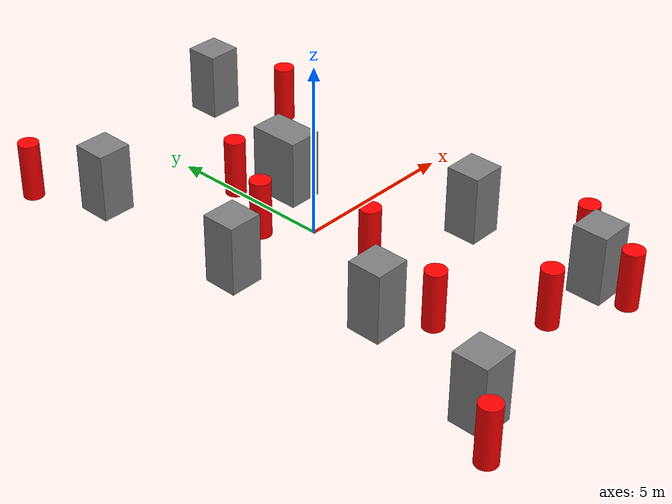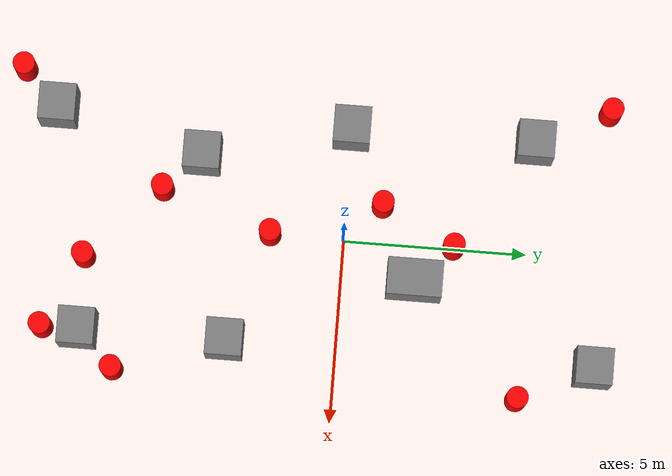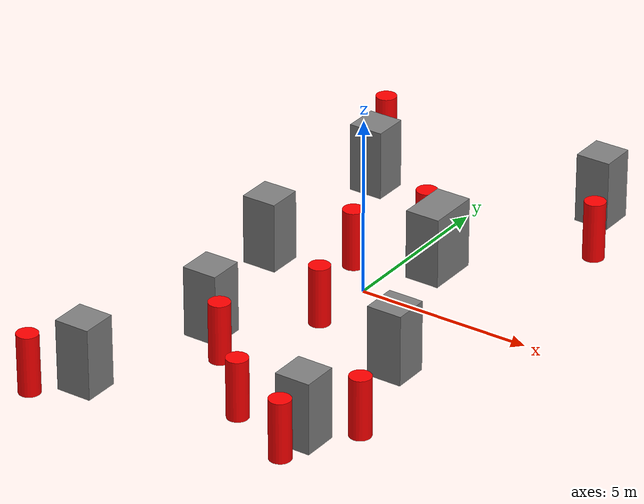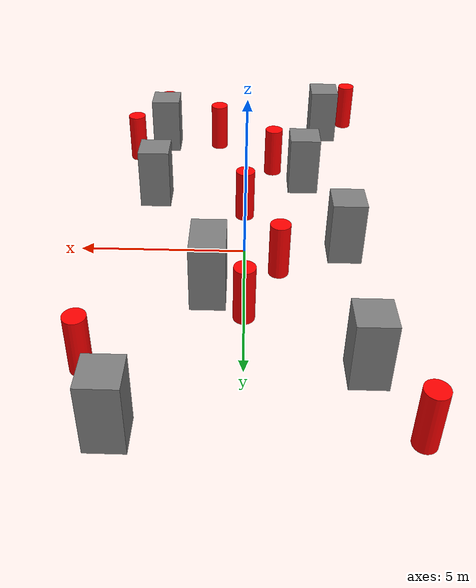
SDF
<sdf version='1.7'>
  <world name='default'>

    <!-- 场景说明: 10x20 地图 (X: [-5,5], Y: [-10,10])               -->
    <!-- 8 个静态方形障碍物 (灰色) + 10 个动态圆柱障碍物 (红色)      -->
    <!-- 环境/颜色参考 test_A_star.world                              -->

    <!-- ===================== 动态圆柱障碍物 ====================== -->

    <!-- 动态0: 沿 X 往返 (-4,-9) <-> (4,-9) -->
    <model name='dynamic_cylinder_0_0.6_0.6_1.7'>
      <static>true</static>
      <pose>-4.0 -9.0 0.85 0 0 0</pose>
      <link name='link'>
        <visual name='visual'>
          <geometry>
            <cylinder>
              <radius>0.3</radius>
              <length>1.7</length>
            </cylinder>
          </geometry>
          <material>
            <ambient>1 0 0 1</ambient>
            <diffuse>1 0 0 1</diffuse>
            <specular>0.5 0.5 0.5 1</specular>
          </material>
        </visual>
      </link>
      <plugin name="obstacle_motion" filename="libobstaclePathPlugin.so">
        <orientation>false</orientation>
        <loop>1</loop>
        <velocity>0.4</velocity>
        <path>
          <waypoint>-4.0 -9.0 0.85</waypoint>
          <waypoint>4.0 -9.0 0.85</waypoint>
        </path>
      </plugin>
    </model>

    <!-- 动态1: 沿 Y 往返 (1,-7) <-> (1,-1) -->
    <model name='dynamic_cylinder_1_0.6_0.6_1.7'>
      <static>true</static>
      <pose>1.0 -7.0 0.85 0 0 0</pose>
      <link name='link'>
        <visual name='visual'>
          <geometry>
            <cylinder>
              <radius>0.3</radius>
              <length>1.7</length>
            </cylinder>
          </geometry>
          <material>
            <ambient>1 0 0 1</ambient>
            <diffuse>1 0 0 1</diffuse>
            <specular>0.5 0.5 0.5 1</specular>
          </material>
        </visual>
      </link>
      <plugin name="obstacle_motion" filename="libobstaclePathPlugin.so">
        <orientation>false</orientation>
        <loop>1</loop>
        <velocity>0.45</velocity>
        <path>
          <waypoint>1.0 -7.0 0.85</waypoint>
          <waypoint>1.0 -1.0 0.85</waypoint>
        </path>
      </plugin>
    </model>

    <!-- 动态2: 沿 Y 往返 (4,-6) <-> (4,1) -->
    <model name='dynamic_cylinder_2_0.6_0.6_1.7'>
      <static>true</static>
      <pose>4.0 -6.0 0.85 0 0 0</pose>
      <link name='link'>
        <visual name='visual'>
          <geometry>
            <cylinder>
              <radius>0.3</radius>
              <length>1.7</length>
            </cylinder>
          </geometry>
          <material>
            <ambient>1 0 0 1</ambient>
            <diffuse>1 0 0 1</diffuse>
            <specular>0.5 0.5 0.5 1</specular>
          </material>
        </visual>
      </link>
      <plugin name="obstacle_motion" filename="libobstaclePathPlugin.so">
        <orientation>false</orientation>
        <loop>1</loop>
        <velocity>0.38</velocity>
        <path>
          <waypoint>4.0 -6.0 0.85</waypoint>
          <waypoint>4.0 1.0 0.85</waypoint>
        </path>
      </plugin>
    </model>

    <!-- 动态3: 斜向往返 (-1,-5) <-> (3,-1) -->
    <model name='dynamic_cylinder_3_0.6_0.6_1.7'>
      <static>true</static>
      <pose>-1.0 -5.0 0.85 0 0 0</pose>
      <link name='link'>
        <visual name='visual'>
          <geometry>
            <cylinder>
              <radius>0.3</radius>
              <length>1.7</length>
            </cylinder>
          </geometry>
          <material>
            <ambient>1 0 0 1</ambient>
            <diffuse>1 0 0 1</diffuse>
            <specular>0.5 0.5 0.5 1</specular>
          </material>
        </visual>
      </link>
      <plugin name="obstacle_motion" filename="libobstaclePathPlugin.so">
        <orientation>false</orientation>
        <loop>1</loop>
        <velocity>0.42</velocity>
        <path>
          <waypoint>-1.0 -5.0 0.85</waypoint>
          <waypoint>3.0 -1.0 0.85</waypoint>
        </path>
      </plugin>
    </model>

    <!-- 动态4: 沿 Y 往返 (0,-2) <-> (0,5) -->
    <model name='dynamic_cylinder_4_0.6_0.6_1.7'>
      <static>true</static>
      <pose>0.0 -2.0 0.85 0 0 0</pose>
      <link name='link'>
        <visual name='visual'>
          <geometry>
            <cylinder>
              <radius>0.3</radius>
              <length>1.7</length>
            </cylinder>
          </geometry>
          <material>
            <ambient>1 0 0 1</ambient>
            <diffuse>1 0 0 1</diffuse>
            <specular>0.5 0.5 0.5 1</specular>
          </material>
        </visual>
      </link>
      <plugin name="obstacle_motion" filename="libobstaclePathPlugin.so">
        <orientation>false</orientation>
        <loop>1</loop>
        <velocity>0.5</velocity>
        <path>
          <waypoint>0.0 -2.0 0.85</waypoint>
          <waypoint>0.0 5.0 0.85</waypoint>
        </path>
      </plugin>
    </model>

    <!-- 动态5: 沿 X 往返 (0,3) <-> (4,3) -->
    <model name='dynamic_cylinder_5_0.6_0.6_1.7'>
      <static>true</static>
      <pose>0.0 3.0 0.85 0 0 0</pose>
      <link name='link'>
        <visual name='visual'>
          <geometry>
            <cylinder>
              <radius>0.3</radius>
              <length>1.7</length>
            </cylinder>
          </geometry>
          <material>
            <ambient>1 0 0 1</ambient>
            <diffuse>1 0 0 1</diffuse>
            <specular>0.5 0.5 0.5 1</specular>
          </material>
        </visual>
      </link>
      <plugin name="obstacle_motion" filename="libobstaclePathPlugin.so">
        <orientation>false</orientation>
        <loop>1</loop>
        <velocity>0.35</velocity>
        <path>
          <waypoint>0.0 3.0 0.85</waypoint>
          <waypoint>4.0 3.0 0.85</waypoint>
        </path>
      </plugin>
    </model>

    <!-- 动态6: 斜向往返 (-1,1) <-> (3,6) -->
    <model name='dynamic_cylinder_6_0.6_0.6_1.7'>
      <static>true</static>
      <pose>-1.0 1.0 0.85 0 0 0</pose>
      <link name='link'>
        <visual name='visual'>
          <geometry>
            <cylinder>
              <radius>0.3</radius>
              <length>1.7</length>
            </cylinder>
          </geometry>
          <material>
            <ambient>1 0 0 1</ambient>
            <diffuse>1 0 0 1</diffuse>
            <specular>0.5 0.5 0.5 1</specular>
          </material>
        </visual>
      </link>
      <plugin name="obstacle_motion" filename="libobstaclePathPlugin.so">
        <orientation>false</orientation>
        <loop>1</loop>
        <velocity>0.48</velocity>
        <path>
          <waypoint>-1.0 1.0 0.85</waypoint>
          <waypoint>3.0 6.0 0.85</waypoint>
        </path>
      </plugin>
    </model>

    <!-- 动态7: 斜向往返 (4,5) <-> (-4,8) -->
    <model name='dynamic_cylinder_7_0.6_0.6_1.7'>
      <static>true</static>
      <pose>4.0 5.0 0.85 0 0 0</pose>
      <link name='link'>
        <visual name='visual'>
          <geometry>
            <cylinder>
              <radius>0.3</radius>
              <length>1.7</length>
            </cylinder>
          </geometry>
          <material>
            <ambient>1 0 0 1</ambient>
            <diffuse>1 0 0 1</diffuse>
            <specular>0.5 0.5 0.5 1</specular>
          </material>
        </visual>
      </link>
      <plugin name="obstacle_motion" filename="libobstaclePathPlugin.so">
        <orientation>false</orientation>
        <loop>1</loop>
        <velocity>0.4</velocity>
        <path>
          <waypoint>4.0 5.0 0.85</waypoint>
          <waypoint>-4.0 8.0 0.85</waypoint>
        </path>
      </plugin>
    </model>

    <!-- 动态8: 沿 X 往返 (-4,7) <-> (4,7) -->
    <model name='dynamic_cylinder_8_0.6_0.6_1.7'>
      <static>true</static>
      <pose>-4.0 7.0 0.85 0 0 0</pose>
      <link name='link'>
        <visual name='visual'>
          <geometry>
            <cylinder>
              <radius>0.3</radius>
              <length>1.7</length>
            </cylinder>
          </geometry>
          <material>
            <ambient>1 0 0 1</ambient>
            <diffuse>1 0 0 1</diffuse>
            <specular>0.5 0.5 0.5 1</specular>
          </material>
        </visual>
      </link>
      <plugin name="obstacle_motion" filename="libobstaclePathPlugin.so">
        <orientation>false</orientation>
        <loop>1</loop>
        <velocity>0.43</velocity>
        <path>
          <waypoint>-4.0 7.0 0.85</waypoint>
          <waypoint>4.0 7.0 0.85</waypoint>
        </path>
      </plugin>
    </model>

    <!-- 动态9: 斜向往返 (3,-8) <-> (-3,0) -->
    <model name='dynamic_cylinder_9_0.6_0.6_1.7'>
      <static>true</static>
      <pose>3.0 -8.0 0.85 0 0 0</pose>
      <link name='link'>
        <visual name='visual'>
          <geometry>
            <cylinder>
              <radius>0.3</radius>
              <length>1.7</length>
            </cylinder>
          </geometry>
          <material>
            <ambient>1 0 0 1</ambient>
            <diffuse>1 0 0 1</diffuse>
            <specular>0.5 0.5 0.5 1</specular>
          </material>
        </visual>
      </link>
      <plugin name="obstacle_motion" filename="libobstaclePathPlugin.so">
        <orientation>false</orientation>
        <loop>1</loop>
        <velocity>0.46</velocity>
        <path>
          <waypoint>3.0 -8.0 0.85</waypoint>
          <waypoint>-3.0 0.0 0.85</waypoint>
        </path>
      </plugin>
    </model>

    <!-- ===================== 静态方形障碍物 ====================== -->

    <!-- 静态方形0: (-3, -8) -->
    <model name='static_box_0'>
      <static>true</static>
      <pose>-3.0 -8.0 1.0 0 0 0</pose>
      <link name='link'>
        <visual name='visual'>
          <geometry>
            <box>
              <size>1.0 1.0 2.0</size>
            </box>
          </geometry>
          <material>
            <ambient>0.5 0.5 0.5 1</ambient>
            <diffuse>0.5 0.5 0.5 1</diffuse>
            <specular>0.3 0.3 0.3 1</specular>
          </material>
        </visual>
        <collision name='collision'>
          <geometry>
            <box>
              <size>1.0 1.0 2.0</size>
            </box>
          </geometry>
        </collision>
      </link>
    </model>

    <!-- 静态方形1: (3, -7) -->
    <model name='static_box_1'>
      <static>true</static>
      <pose>3.0 -7.0 1.0 0 0 0</pose>
      <link name='link'>
        <visual name='visual'>
          <geometry>
            <box>
              <size>1.0 1.0 2.0</size>
            </box>
          </geometry>
          <material>
            <ambient>0.5 0.5 0.5 1</ambient>
            <diffuse>0.5 0.5 0.5 1</diffuse>
            <specular>0.3 0.3 0.3 1</specular>
          </material>
        </visual>
        <collision name='collision'>
          <geometry>
            <box>
              <size>1.0 1.0 2.0</size>
            </box>
          </geometry>
        </collision>
      </link>
    </model>

    <!-- 静态方形2: (-2, -4) -->
    <model name='static_box_2'>
      <static>true</static>
      <pose>-2.0 -4.0 1.0 0 0 0</pose>
      <link name='link'>
        <visual name='visual'>
          <geometry>
            <box>
              <size>1.0 1.0 2.0</size>
            </box>
          </geometry>
          <material>
            <ambient>0.5 0.5 0.5 1</ambient>
            <diffuse>0.5 0.5 0.5 1</diffuse>
            <specular>0.3 0.3 0.3 1</specular>
          </material>
        </visual>
        <collision name='collision'>
          <geometry>
            <box>
              <size>1.0 1.0 2.0</size>
            </box>
          </geometry>
        </collision>
      </link>
    </model>

    <!-- 静态方形3: (3, -3) -->
    <model name='static_box_3'>
      <static>true</static>
      <pose>3.0 -3.0 1.0 0 0 0</pose>
      <link name='link'>
        <visual name='visual'>
          <geometry>
            <box>
              <size>1.0 1.0 2.0</size>
            </box>
          </geometry>
          <material>
            <ambient>0.5 0.5 0.5 1</ambient>
            <diffuse>0.5 0.5 0.5 1</diffuse>
            <specular>0.3 0.3 0.3 1</specular>
          </material>
        </visual>
        <collision name='collision'>
          <geometry>
            <box>
              <size>1.0 1.0 2.0</size>
            </box>
          </geometry>
        </collision>
      </link>
    </model>

    <!-- 静态方形4: (-3, 0) -->
    <model name='static_box_4'>
      <static>true</static>
      <pose>-3.0 0.0 1.0 0 0 0</pose>
      <link name='link'>
        <visual name='visual'>
          <geometry>
            <box>
              <size>1.0 1.0 2.0</size>
            </box>
          </geometry>
          <material>
            <ambient>0.5 0.5 0.5 1</ambient>
            <diffuse>0.5 0.5 0.5 1</diffuse>
            <specular>0.3 0.3 0.3 1</specular>
          </material>
        </visual>
        <collision name='collision'>
          <geometry>
            <box>
              <size>1.0 1.0 2.0</size>
            </box>
          </geometry>
        </collision>
      </link>
    </model>

    <!-- 静态方形5: (1, 2) -->
    <model name='static_box_5'>
      <static>true</static>
      <pose>1.0 2.0 1.0 0 0 0</pose>
      <link name='link'>
        <visual name='visual'>
          <geometry>
            <box>
              <size>1.0 1.5 2.0</size>
            </box>
          </geometry>
          <material>
            <ambient>0.5 0.5 0.5 1</ambient>
            <diffuse>0.5 0.5 0.5 1</diffuse>
            <specular>0.3 0.3 0.3 1</specular>
          </material>
        </visual>
        <collision name='collision'>
          <geometry>
            <box>
              <size>1.0 1.5 2.0</size>
            </box>
          </geometry>
        </collision>
      </link>
    </model>

    <!-- 静态方形6: (-3, 5) -->
    <model name='static_box_6'>
      <static>true</static>
      <pose>-3.0 5.0 1.0 0 0 0</pose>
      <link name='link'>
        <visual name='visual'>
          <geometry>
            <box>
              <size>1.0 1.0 2.0</size>
            </box>
          </geometry>
          <material>
            <ambient>0.5 0.5 0.5 1</ambient>
            <diffuse>0.5 0.5 0.5 1</diffuse>
            <specular>0.3 0.3 0.3 1</specular>
          </material>
        </visual>
        <collision name='collision'>
          <geometry>
            <box>
              <size>1.0 1.0 2.0</size>
            </box>
          </geometry>
        </collision>
      </link>
    </model>

    <!-- 静态方形7: (3, 7) -->
    <model name='static_box_7'>
      <static>true</static>
      <pose>3.0 7.0 1.0 0 0 0</pose>
      <link name='link'>
        <visual name='visual'>
          <geometry>
            <box>
              <size>1.0 1.0 2.0</size>
            </box>
          </geometry>
          <material>
            <ambient>0.5 0.5 0.5 1</ambient>
            <diffuse>0.5 0.5 0.5 1</diffuse>
            <specular>0.3 0.3 0.3 1</specular>
          </material>
        </visual>
        <collision name='collision'>
          <geometry>
            <box>
              <size>1.0 1.0 2.0</size>
            </box>
          </geometry>
        </collision>
      </link>
    </model>

    <!-- ===================== 环境基础（参考 test_A_star.world）== -->

    <light name='sun' type='directional'>
      <cast_shadows>1</cast_shadows>
      <pose>0 0 10 0 -0 0</pose>
      <diffuse>0.8 0.8 0.8 1</diffuse>
      <specular>0.2 0.2 0.2 1</specular>
      <attenuation>
        <range>1000</range>
        <constant>0.9</constant>
        <linear>0.01</linear>
        <quadratic>0.001</quadratic>
      </attenuation>
      <direction>-0.5 0.1 -0.9</direction>
      <spot>
        <inner_angle>0</inner_angle>
        <outer_angle>0</outer_angle>
        <falloff>0</falloff>
      </spot>
    </light>

    <!-- 地面：只保留 collision，不加 visual（避免昏暗） -->
    <model name='ground_plane'>
      <static>1</static>
      <link name='link'>
        <collision name='collision'>
          <geometry>
            <plane>
              <normal>0 0 1</normal>
              <size>100 100</size>
            </plane>
          </geometry>
        </collision>
      </link>
    </model>

    <physics type='ode'>
      <max_step_size>0.001</max_step_size>
      <real_time_factor>1</real_time_factor>
      <real_time_update_rate>1000</real_time_update_rate>
    </physics>

    <scene>
      <ambient>0.4 0.4 0.4 1</ambient>
      <background>0.7 0.7 0.7 1</background>
      <shadows>1</shadows>
    </scene>

    <gui fullscreen='0'>
      <camera name='user_camera'>
        <pose>6.39292 -16.0551 24.6198 0 0.913797 2.1162</pose>
        <view_controller>orbit</view_controller>
        <projection_type>perspective</projection_type>
      </camera>
    </gui>

  </world>
</sdf>
